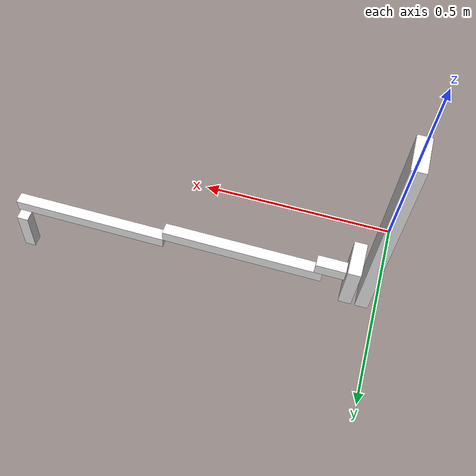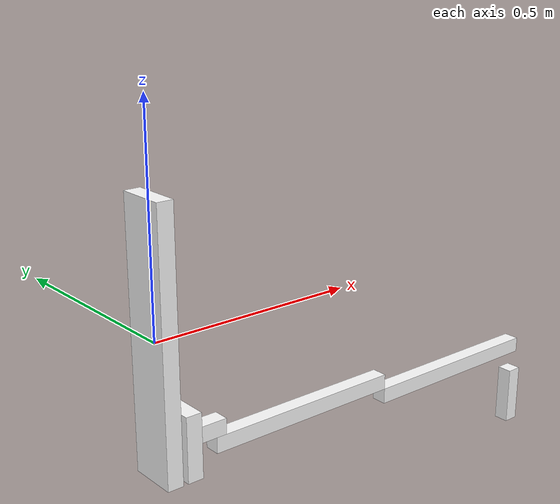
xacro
<?xml version='1.0'?>

<robot name="titan" xmlns:xacro="http://www.ros.org/wiki/xacro">
	<xacro:property name="M_PI" value="3.14159"/>
	<xacro:property name="rotate90CCW" value="${3.14159 / 2}"/>
	<xacro:property name="rotate90CW" value="${-3.14159 / 2}"/>

	<xacro:property name="total_mass" value="10"/>

	<xacro:property name="arm_base_x_size" value="0.0381"/>
	<xacro:property name="arm_base_y_size" value="0.1143"/>
	<xacro:property name="arm_base_z_size" value="0.6096"/>
	<xacro:property name="arm_base_mass" value="0.3"/>

	<xacro:property name="zaxis_base_x_size" value="0.0381"/>
	<xacro:property name="zaxis_base_y_size" value="0.1143"/>
	<xacro:property name="zaxis_base_z_size" value="0.1524"/>
	<xacro:property name="zaxis_base_mass" value="0.05"/>

	<xacro:property name="link1_base_x_size" value="0.09"/>
	<xacro:property name="link1_base_y_size" value="0.0381"/>
	<xacro:property name="link1_base_z_size" value="0.0381"/>
	<xacro:property name="link1_base_mass" value="0.05"/>

	<xacro:property name="link2_base_x_size" value="0.5"/>
	<xacro:property name="link2_base_y_size" value="0.0381"/>
	<xacro:property name="link2_base_z_size" value="0.0381"/>
	<xacro:property name="link2_base_mass" value="0.05"/>

	<xacro:property name="link3_base_x_size" value="0.5"/>
	<xacro:property name="link3_base_y_size" value="0.0381"/>
	<xacro:property name="link3_base_z_size" value="0.0381"/>
	<xacro:property name="link3_base_mass" value="0.05"/>

	<xacro:property name="eef_x_size" value="0.0381"/>
	<xacro:property name="eef_y_size" value="0.0381"/>
	<xacro:property name="eef_z_size" value="0.15"/>
	<xacro:property name="eef_mass" value="0.05"/>

	<xacro:arg name="robot_namespace" default="/" />

	<xacro:include filename="$(find titan_description)/urdf/materials.xacro" />
	<xacro:include filename="$(find titan_description)/urdf/macros.xacro" />

	<link name="arm_base_link">
		<pose xyz="0 0 0" rpy="0 0 0" />
		<xacro:box_inertia m="${arm_base_mass}" x="${arm_base_x_size}" y="${arm_base_y_size}" z="${arm_base_z_size}" />

		<xacro:make_box x="0" y="0" z="0" roll="0" pitch="0" yaw="0" sizex="${arm_base_x_size}" sizey="${arm_base_y_size}" sizez="${arm_base_z_size}"/>
	</link>

	<link name="zaxis_base_link">
		<xacro:make_box x="0" y="0" z="0" roll="0" pitch="0" yaw="0" sizex="${zaxis_base_x_size}" sizey="${zaxis_base_y_size}" sizez="${zaxis_base_z_size}"/>

	</link>

	<link name="link1">
		<xacro:make_box x="0" y="0" z="0" roll="0" pitch="0" yaw="0" sizex="${link1_base_x_size}" sizey="${link1_base_y_size}" sizez="${link1_base_z_size}"/>
	</link>

	<link name="link2">
		<xacro:make_box x="${link2_base_x_size/2}" y="0" z="0" roll="0" pitch="0" yaw="0" sizex="${link2_base_x_size}" sizey="${link2_base_y_size}" sizez="${link2_base_z_size}"/>
	</link>

	<link name="link3">
		<xacro:make_box x="${link3_base_x_size/2}" y="0" z="0" roll="0" pitch="0" yaw="0" sizex="${link3_base_x_size}" sizey="${link3_base_y_size}" sizez="${link3_base_z_size}"/>
	</link>

	<link name="end_effector">
		<xacro:make_box x="0" y="0" z="0" roll="0" pitch="0" yaw="0" sizex="${eef_x_size}" sizey="${eef_y_size}" sizez="${eef_z_size}"/>
	</link>

	<joint name="base_to_zaxis" type="prismatic">
		<parent link="arm_base_link"/>
		<child link="zaxis_base_link"/>
		<limit effort="1000.0" lower="0.0" upper="${arm_base_z_size }" velocity="0.5"/>
		<axis xyz="0 0 1"/>
		<origin xyz="0.05 0 ${-arm_base_z_size/2 + zaxis_base_z_size/2}"/>
	</joint>

	<joint name="zaxis_to_link1" type="fixed">
		<parent link="zaxis_base_link"/>
		<child link="link1"/>
		<origin xyz="${zaxis_base_x_size/2 + link1_base_x_size/2} 0 0" rpy="0 0 0"/>
	</joint>

	<joint name="link1_to_link2" type="revolute">
		<parent link="link1"/>
		<child link="link2"/>
		<limit effort="1000.0" lower="-2" upper="2" velocity="0.45"/>
		<axis xyz="0 0 1"/>
		<origin xyz="${link1_base_z_size/2} 0 ${-link1_base_z_size}" rpy="0 0 0" />
	</joint>

	<joint name="link2_to_link3" type="revolute">
		<parent link="link2"/>
		<child link="link3"/>
		<limit effort="1000.0" lower="-3.0" upper="3.0" velocity="0.255"/>
		<axis xyz="0 0 1"/>
		<origin xyz="${link2_base_x_size} 0 ${-link2_base_z_size}" rpy="0 0 0" />
	</joint>

	<joint name="link3_to_eef" type="revolute">
		<parent link="link3"/>
		<limit effort="1000.0" lower="${-1.57}" upper="1.57" velocity="0.35"/>
		<axis xyz="0 0 1"/>
		<child link="end_effector"/>
                <origin xyz="${link3_base_x_size} 0 ${-eef_z_size + 0.001}" rpy="0 0 0"/>
	</joint>
</robot>

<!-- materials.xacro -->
<robot>

  <material name="black">
    <color rgba="0.0 0.0 0.0 1.0"/>
  </material>

  <material name="blue">
    <color rgba="0.0 0.0 0.8 1.0"/>
  </material>

  <material name="green">
    <color rgba="0.0 0.8 0.0 1.0"/>
  </material>

  <material name="grey">
    <color rgba="0.2 0.2 0.2 1.0"/>
  </material>

  <material name="orange">
    <color rgba="${255/255} ${108/255} ${10/255} 1.0"/>
  </material>

  <material name="brown">
    <color rgba="${222/255} ${207/255} ${195/255} 1.0"/>
  </material>

  <material name="red">
    <color rgba="0.8 0.0 0.0 1.0"/>
  </material>

  <material name="white">
    <color rgba="1.0 1.0 1.0 1.0"/>
  </material>

 <material name="silver">
    	<color rgba="0.75 0.75 0.75 1.0"/>
 </material>

</robot>

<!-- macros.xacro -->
<robot name="titan" xmlns:xacro="http://ros.org/wiki/xacro">
	<xacro:macro name="default_inertial" params="mass">
		<inertial>
			<mass value="${mass}" />
			<inertia ixx="1.0" ixy="0.0" ixz="0.0" iyy="1.0" iyz="0.0" izz="1.0" />
		</inertial>
	</xacro:macro>

	<xacro:macro name="box_inertia" params="m x y z">
		<inertia  ixx="${m*(y*y+z*z)/12}" ixy = "0" ixz = "0" iyy="${m*(x*x+z*z)/12}" iyz = "0" izz="${m*(x*x+z*z)/12}"/>
	</xacro:macro>

	<xacro:macro name="cylinder_inertia" params="m r h">
		<inertia  ixx="${m*(3*r*r+h*h)/12}" ixy = "0" ixz = "0" iyy="${m*(3*r*r+h*h)/12}" iyz = "0" izz="${m*r*r/2}"/>
	</xacro:macro>

	<xacro:macro name="make_box" params="x y z roll pitch yaw sizex sizey sizez">

		<collision name='collision'>
			<origin xyz="${x} ${y} ${z}" rpy="${roll} ${pitch} ${yaw}"/>
			<geometry>
				<box size="${sizex} ${sizey} ${sizez}"/>
			</geometry>
		</collision>

		<visual name='visual'>
			<origin xyz="${x} ${y} ${z}" rpy="${roll} ${pitch} ${yaw}"/>
			<geometry>
				<box size="${sizex} ${sizey} ${sizez}"/>
			</geometry>
			<material name="white"/>
		</visual>
	</xacro:macro>

</robot>
